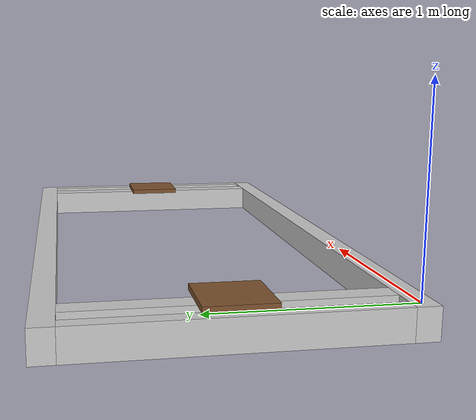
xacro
<?xml version="1.0"?>
<robot name="iiwas_frame" xmlns:xacro="http://www.ros.org/wiki/xacro">
    <xacro:include filename="$(find iiwas_description)/urdf/materials.xacro" />
    <xacro:include filename="$(find iiwas_description)/urdf/iiwas_frame.xacro"/>

    <xacro:property name="M_PI" value="3.1415926535897931"/>
    <xacro:arg name="world_to_front_base_x" default="0.190"/>
    <xacro:arg name="world_to_front_base_y" default="0.813"/>
    <xacro:arg name="world_to_front_base_z" default="0.0"/>

    <xacro:arg name="world_to_back_base_x" default="3.198"/>
    <xacro:arg name="world_to_back_base_y" default="0.813"/>
    <xacro:arg name="world_to_back_base_z" default="0.0"/>

    <xacro:iiwas_frame name="iiwas_frame" front_x="$(arg world_to_front_base_x)" front_y="$(arg world_to_front_base_y)"
                       front_z ="$(arg world_to_front_base_z)" back_x="$(arg world_to_back_base_x)"
                       back_y="$(arg world_to_back_base_y)" back_z ="$(arg world_to_back_base_z)"/>

    <!-- Load Gazebo lib and set the robot namespace -->
    <gazebo>
        <plugin name="gazebo_ros_control" filename="libgazebo_ros_control.so">
        </plugin>
    </gazebo>

</robot>

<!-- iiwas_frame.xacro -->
<robot xmlns:xacro="http://www.ros.org/wiki/xacro">
    <!--       xmlns:sensor="http://playerstage.sourceforge.net/gazebo/xmlschema/#sensor"-->
    <!--       xmlns:controller="http://playerstage.sourceforge.net/gazebo/xmlschema/#controller"-->
    <!--       xmlns:interface="http://playerstage.sourceforge.net/gazebo/xmlschema/#interface">-->

    <xacro:property name="horizontal_bar_outer_l" value="1.56"/>
    <xacro:property name="horizontal_bar_outer_w" value="0.08"/>
    <xacro:property name="horizontal_bar_outer_h" value="0.165"/>
    <xacro:property name="horizontal_bar_inner_l" value="1.56"/>
    <xacro:property name="horizontal_bar_inner_w" value="0.12"/>
    <xacro:property name="horizontal_bar_inner_h" value="0.165"/>
    <xacro:property name="vertical_bar_l" value="3.50"/>
    <xacro:property name="vertical_bar_w" value="0.12"/>
    <xacro:property name="vertical_bar_h" value="0.165"/>
    <xacro:property name="base_l" value="0.35"/>
    <xacro:property name="base_w" value="0.35"/>
    <xacro:property name="base_h" value="0.03"/>
    <xacro:property name="base_to_bar_y" value="0.61"/>
    <xacro:property name="world_frame_origin_x" value="-0.048"/>
    <xacro:property name="world_frame_origin_y" value="-0.076"/>

    <xacro:macro name="iiwas_frame" params="name front_x front_y front_z back_x back_y back_z">

        <link name="world"/>
        <joint name="iiwa_frame_origin_joint" type="fixed">
            <origin xyz="${world_frame_origin_x} ${world_frame_origin_y} 0.0"
                    rpy="0.0 0.0 0.0"/>
            <parent link="world"/>
            <child link="iiwa_frame_origin"/>
        </joint>

        <link name="iiwa_frame_origin">
        </link>

        <joint name="front_in" type="fixed">
            <origin xyz="${front_x - world_frame_origin_x}
                    ${horizontal_bar_inner_l/2 + vertical_bar_w}
                    -${vertical_bar_h/2}" rpy="0.0 0.0 0.0"/>

            <parent link="iiwa_frame_origin"/>
            <child link="h_bar_front_in"/>
        </joint>

        <link name="h_bar_front_in">
            <inertial>
                <origin xyz="0 0 0" rpy="0 0 0"/>
                <mass value="5"/>
                <inertia
                        ixx="0.0175" ixy="0.0" ixz="0.0"
                        iyy="1.025" iyz="0.0"
                        izz="1.02"/>
            </inertial>
            <visual>
                <origin xyz="0.0 0.0 0.0"
                        rpy="0.0 0.0 0.0"/>
                <geometry>
                    <box size="${horizontal_bar_inner_w} ${horizontal_bar_inner_l} ${horizontal_bar_inner_h}"/>
                </geometry>
                <material name="LightGrey"/>
            </visual>

            <collision>
                <origin xyz="0.0 0.0 0.0"
                        rpy="0.0 0.0 0.0"/>
                <geometry>
                    <box size="${horizontal_bar_inner_w} ${horizontal_bar_inner_l} ${horizontal_bar_inner_h}"/>
                </geometry>
            </collision>
            <selfCollide>0</selfCollide>
        </link>

        <joint name="front_base_joint" type="fixed">
            <origin xyz="${front_x - world_frame_origin_x}
                   ${front_y - world_frame_origin_y}
                   ${base_h/2 + front_z}"
                    rpy="0.0 0.0 0.0"/>
            <parent link="iiwa_frame_origin"/>
            <child link="front_base"/>
        </joint>

        <link name="front_base">
            <inertial>
                <origin xyz="0 0 0" rpy="0 0 0"/>
                <mass value="3"/>
                <inertia
                        ixx="0.03" ixy="0.0" ixz="0.0"
                        iyy="0.03" iyz="0.0"
                        izz="0.06"/>
            </inertial>
            <visual>
                <origin xyz="0.0 0.0 0.0"
                        rpy="0.0 0.0 0.0"/>
                <geometry>
                    <box size="${base_l} ${base_w} ${base_h}"/>
                </geometry>
                <material name="Brown"/>
            </visual>

            <collision>
                <origin xyz="0.0 0.0 0.0"
                        rpy="0.0 0.0 0.0"/>
                <geometry>
                    <box size="${base_l} ${base_w} ${base_h}"/>
                </geometry>
            </collision>
            <selfCollide>0</selfCollide>
        </link>

        <joint name="back_in" type="fixed">
            <origin xyz="${back_x - world_frame_origin_x}
                    ${horizontal_bar_inner_l/2 + vertical_bar_w}
                    -${vertical_bar_h/2}" rpy="0.0 0.0 0.0"/>
            <parent link="iiwa_frame_origin"/>
            <child link="h_bar_back_in"/>
        </joint>

        <link name="h_bar_back_in">
            <inertial>
                <origin xyz="0 0 0" rpy="0 0 0"/>
                <mass value="5"/>
                <inertia
                        ixx="0.0175" ixy="0.0" ixz="0.0"
                        iyy="1.025" iyz="0.0"
                        izz="1.02"/>
            </inertial>
            <visual>
                <origin xyz="0.0 0.0 0.0"
                        rpy="0.0 0.0 0.0"/>
                <geometry>
                    <box size="${horizontal_bar_inner_w} ${horizontal_bar_inner_l} ${horizontal_bar_inner_h}"/>
                </geometry>
                <material name="LightGrey"/>
            </visual>

            <collision>
                <origin xyz="0.0 0.0 0.0"
                        rpy="0.0 0.0 0.0"/>
                <geometry>
                    <box size="${horizontal_bar_inner_w} ${horizontal_bar_inner_l} ${horizontal_bar_inner_h}"/>
                </geometry>
            </collision>
            <selfCollide>0</selfCollide>
        </link>

        <joint name="back_base_joint" type="fixed">
            <origin xyz="${back_x - world_frame_origin_x}
                     ${back_y - world_frame_origin_y}
                     ${base_h/2 + back_z}"
                    rpy="0.0 0.0 ${M_PI}"/>
            <parent link="iiwa_frame_origin"/>
            <child link="back_base"/>
        </joint>

        <link name="back_base">
            <inertial>
                <origin xyz="0 0 0" rpy="0 0 0"/>
                <mass value="3"/>
                <inertia
                        ixx="0.03" ixy="0.0" ixz="0.0"
                        iyy="0.03" iyz="0.0"
                        izz="0.06"/>
            </inertial>
            <visual>
                <origin xyz="0.0 0.0 0.0"
                        rpy="0.0 0.0 0.0"/>
                <geometry>
                    <box size="${base_l} ${base_w} ${base_h}"/>
                </geometry>
                <material name="Brown"/>
            </visual>

            <collision>
                <origin xyz="0.0 0.0 0.0"
                        rpy="0.0 0.0 0.0"/>
                <geometry>
                    <box size="${base_l} ${base_w} ${base_h}"/>
                </geometry>
            </collision>
            <selfCollide>0</selfCollide>
        </link>

        <joint name="front_out" type="fixed">
            <origin xyz="${horizontal_bar_outer_w/2} ${horizontal_bar_outer_l/2 + vertical_bar_w} -${vertical_bar_h/2}"
                    rpy="0.0 0.0 0"/>
            <parent link="iiwa_frame_origin"/>
            <child link="h_bar_front_out"/>
        </joint>

        <link name="h_bar_front_out">
            <inertial>
                <origin xyz="0 0 0" rpy="0 0 0"/>
                <mass value="5"/>
                <inertia
                        ixx="0.014" ixy="0.0" ixz="0.0"
                        iyy="1.025" iyz="0.0"
                        izz="1.02"/>
            </inertial>
            <visual>
                <origin xyz="0.0 0.0 0.0"
                        rpy="0.0 0.0 0.0"/>
                <geometry>
                    <box size="${horizontal_bar_outer_w} ${horizontal_bar_outer_l} ${horizontal_bar_outer_h}"/>
                </geometry>
                <material name="LightGrey"/>
            </visual>

            <collision>
                <origin xyz="0.0 0.0 0.0"
                        rpy="0.0 0.0 0.0"/>
                <geometry>
                    <box size="${horizontal_bar_outer_w} ${horizontal_bar_outer_l} ${horizontal_bar_outer_h}"/>
                </geometry>
            </collision>
            <selfCollide>0</selfCollide>
        </link>

        <joint name="left" type="fixed">
            <origin xyz="${vertical_bar_l/2 - horizontal_bar_outer_w/2} ${horizontal_bar_outer_l/2 + vertical_bar_w/2} 0.0"
                    rpy="0.0 0.0 ${M_PI}"/>
            <parent link="h_bar_front_out"/>
            <child link="v_bar_left"/>
        </joint>

        <link name="v_bar_left">
            <inertial>
                <origin xyz="0 0 0" rpy="0 0 0"/>
                <mass value="8"/>
                <inertia
                        ixx="0.028" ixy="0.0" ixz="0.0"
                        iyy="8.467" iyz="0.0"
                        izz="8.459"/>
            </inertial>
            <visual>
                <origin xyz="0.0 0.0 0.0"
                        rpy="0.0 0.0 0.0"/>
                <geometry>
                    <box size="${vertical_bar_l} ${vertical_bar_w} ${vertical_bar_h}"/>
                </geometry>
                <material name="LightGrey"/>
            </visual>

            <collision>
                <origin xyz="0.0 0.0 0.0"
                        rpy="0.0 0.0 0.0"/>
                <geometry>
                    <box size="${vertical_bar_l} ${vertical_bar_w} ${vertical_bar_h}"/>
                </geometry>
            </collision>
            <selfCollide>0</selfCollide>
        </link>

        <joint name="frame_right" type="fixed">
            <origin xyz="${vertical_bar_l/2 - horizontal_bar_outer_w/2} -${horizontal_bar_outer_l/2 + vertical_bar_w/2} 0.0"
                    rpy="0.0 0.0 0.0"/>
            <parent link="h_bar_front_out"/>
            <child link="v_bar_right"/>
        </joint>

        <link name="v_bar_right">
            <inertial>
                <origin xyz="0 0 0" rpy="0 0 0"/>
                <mass value="8"/>
                <inertia
                        ixx="0.028" ixy="0.0" ixz="0.0"
                        iyy="8.467" iyz="0.0"
                        izz="8.459"/>
            </inertial>
            <visual>
                <origin xyz="0.0 0.0 0.0"
                        rpy="0.0 0.0 0.0"/>
                <geometry>
                    <box size="${vertical_bar_l} ${vertical_bar_w} ${vertical_bar_h}"/>
                </geometry>
                <material name="LightGrey"/>
            </visual>

            <collision>
                <origin xyz="0.0 0.0 0.0"
                        rpy="0.0 0.0 0.0"/>
                <geometry>
                    <box size="${vertical_bar_l} ${vertical_bar_w} ${vertical_bar_h}"/>
                </geometry>
            </collision>
            <selfCollide>0</selfCollide>
        </link>

        <joint name="back_out" type="fixed">
            <origin xyz="${vertical_bar_l/2 - horizontal_bar_outer_w/2} ${horizontal_bar_outer_l/2 + vertical_bar_w/2} 0.0"
                    rpy="0.0 0.0 0.0"/>
            <parent link="v_bar_right"/>
            <child link="h_bar_back_out"/>
        </joint>

        <link name="h_bar_back_out">
            <inertial>
                <origin xyz="0 0 0" rpy="0 0 0"/>
                <mass value="5"/>
                <inertia
                        ixx="0.014" ixy="0.0" ixz="0.0"
                        iyy="1.025" iyz="0.0"
                        izz="1.02"/>
            </inertial>
            <visual>
                <origin xyz="0.0 0.0 0.0"
                        rpy="0.0 0.0 0.0"/>
                <geometry>
                    <box size="${horizontal_bar_outer_w} ${horizontal_bar_outer_l} ${horizontal_bar_outer_h}"/>
                </geometry>
                <material name="LightGrey"/>
            </visual>

            <collision>
                <origin xyz="0.0 0.0 0.0"
                        rpy="0.0 0.0 0.0"/>
                <geometry>
                    <box size="${horizontal_bar_outer_w} ${horizontal_bar_outer_l} ${horizontal_bar_outer_h}"/>
                </geometry>
            </collision>
            <selfCollide>0</selfCollide>
        </link>

        <gazebo reference="front_base_joint">
            <preserveFixedJoint>true</preserveFixedJoint>
        </gazebo>
        <gazebo reference="front_base">
        </gazebo>

        <gazebo reference="back_base_joint">
            <preserveFixedJoint>true</preserveFixedJoint>
        </gazebo>
        <gazebo reference="back_base">
        </gazebo>

    </xacro:macro>

</robot>
